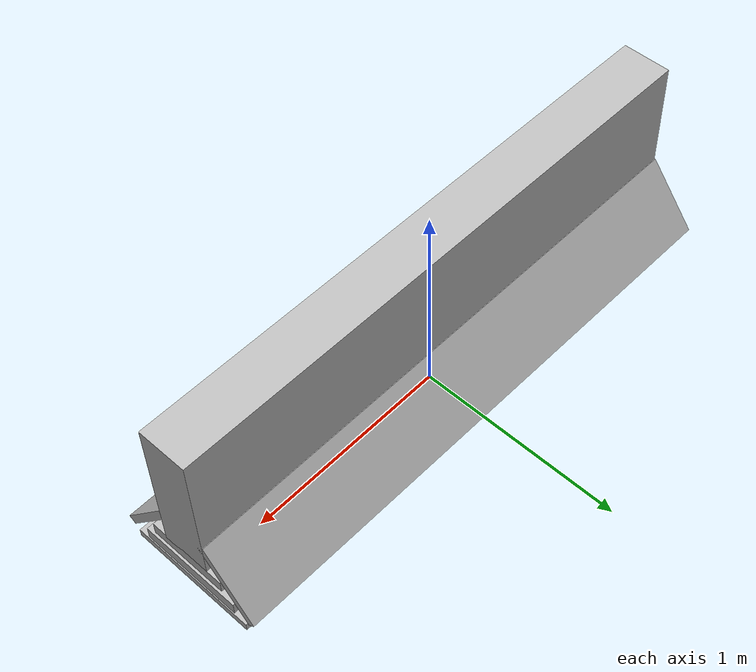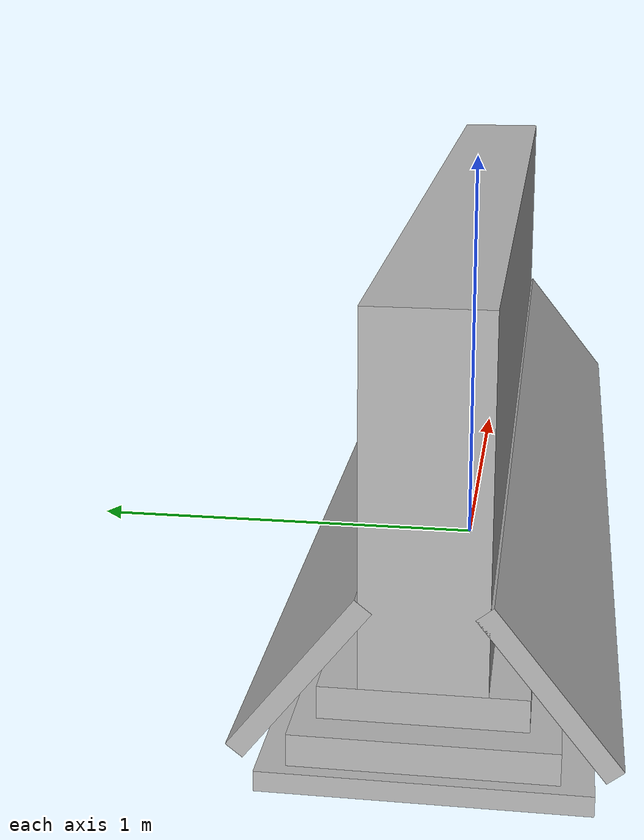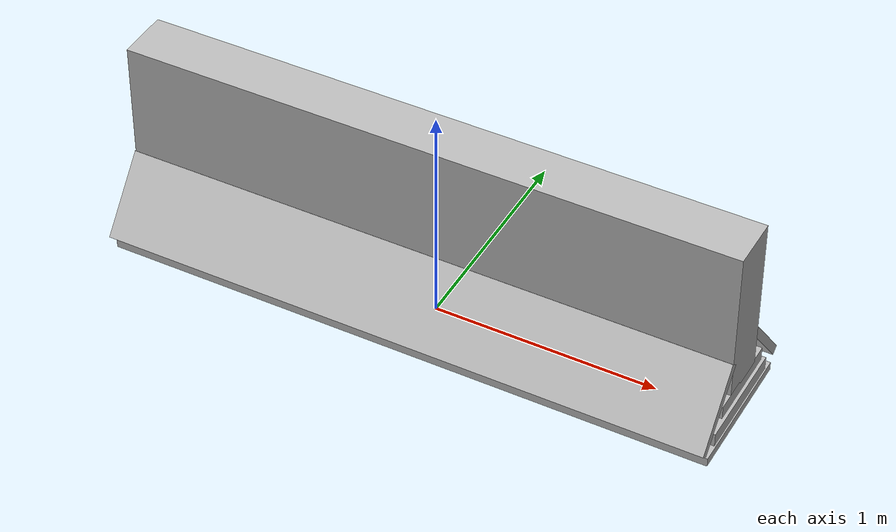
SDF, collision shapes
<?xml version='1.0'?>
<sdf version='1.7'>
  <model name='jersey_barrier2'>
    <link name='link'>
      <self_collide>0</self_collide>
      <enable_wind>0</enable_wind>
      <kinematic>0</kinematic>
      <inertial>
        <inertia>
          <ixx>0</ixx>
          <ixy>0</ixy>
          <ixz>0</ixz>
          <iyy>0</iyy>
          <iyz>0</iyz>
          <izz>0</izz>
        </inertia>
        <mass>0</mass>
        <pose>0 0 0 0 -0 0</pose>
      </inertial>
      <pose>0 0 0 0 -0 0</pose>
      <gravity>1</gravity>
      <visual name='visual'>
        <geometry>
          <mesh>
            <uri>model://jersey_barrier/meshes/jersey_barrier.dae</uri>
          </mesh>
        </geometry>
        <material>
          <shader type='pixel'>
            <normal_map>__default__</normal_map>
          </shader>
        </material>
        <pose>0 0 0 0 -0 0</pose>
        <transparency>0</transparency>
        <cast_shadows>1</cast_shadows>
      </visual>
      <collision name='upright'>
        <laser_retro>0</laser_retro>
        <max_contacts>10</max_contacts>
        <pose>0 0 0.5715 0 -0 0</pose>
        <geometry>
          <box>
            <size>2.72241 0.2324 0.711248</size>
          </box>
        </geometry>
        <surface>
          <friction>
            <ode>
              <mu>1</mu>
              <mu2>1</mu2>
              <fdir1>0 0 0</fdir1>
              <slip1>0</slip1>
              <slip2>0</slip2>
            </ode>
            <torsional>
              <coefficient>1</coefficient>
              <patch_radius>0</patch_radius>
              <surface_radius>0</surface_radius>
              <use_patch_radius>1</use_patch_radius>
              <ode>
                <slip>0</slip>
              </ode>
            </torsional>
          </friction>
          <bounce>
            <restitution_coefficient>0</restitution_coefficient>
            <threshold>1e+06</threshold>
          </bounce>
          <contact>
            <collide_without_contact>0</collide_without_contact>
            <collide_without_contact_bitmask>1</collide_without_contact_bitmask>
            <collide_bitmask>1</collide_bitmask>
            <ode>
              <soft_cfm>0</soft_cfm>
              <soft_erp>0.2</soft_erp>
              <kp>1e+13</kp>
              <kd>1</kd>
              <max_vel>0.01</max_vel>
              <min_depth>0</min_depth>
            </ode>
            <bullet>
              <split_impulse>1</split_impulse>
              <split_impulse_penetration_threshold>-0.01</split_impulse_penetration_threshold>
              <soft_cfm>0</soft_cfm>
              <soft_erp>0.2</soft_erp>
              <kp>1e+13</kp>
              <kd>1</kd>
            </bullet>
          </contact>
        </surface>
      </collision>
      <collision name='base'>
        <laser_retro>0</laser_retro>
        <max_contacts>10</max_contacts>
        <pose>0 0 0.032258 0 -0 0</pose>
        <geometry>
          <box>
            <size>2.72241 0.615105 0.040146</size>
          </box>
        </geometry>
        <surface>
          <friction>
            <ode>
              <mu>1</mu>
              <mu2>1</mu2>
              <fdir1>0 0 0</fdir1>
              <slip1>0</slip1>
              <slip2>0</slip2>
            </ode>
            <torsional>
              <coefficient>1</coefficient>
              <patch_radius>0</patch_radius>
              <surface_radius>0</surface_radius>
              <use_patch_radius>1</use_patch_radius>
              <ode>
                <slip>0</slip>
              </ode>
            </torsional>
          </friction>
          <bounce>
            <restitution_coefficient>0</restitution_coefficient>
            <threshold>1e+06</threshold>
          </bounce>
          <contact>
            <collide_without_contact>0</collide_without_contact>
            <collide_without_contact_bitmask>1</collide_without_contact_bitmask>
            <collide_bitmask>1</collide_bitmask>
            <ode>
              <soft_cfm>0</soft_cfm>
              <soft_erp>0.2</soft_erp>
              <kp>1e+13</kp>
              <kd>1</kd>
              <max_vel>0.01</max_vel>
              <min_depth>0</min_depth>
            </ode>
            <bullet>
              <split_impulse>1</split_impulse>
              <split_impulse_penetration_threshold>-0.01</split_impulse_penetration_threshold>
              <soft_cfm>0</soft_cfm>
              <soft_erp>0.2</soft_erp>
              <kp>1e+13</kp>
              <kd>1</kd>
            </bullet>
          </contact>
        </surface>
      </collision>
      <collision name='base2'>
        <laser_retro>0</laser_retro>
        <max_contacts>10</max_contacts>
        <pose>0 0 0.1 0 -0 0</pose>
        <geometry>
          <box>
            <size>2.72241 0.493177 0.062227</size>
          </box>
        </geometry>
        <surface>
          <friction>
            <ode>
              <mu>1</mu>
              <mu2>1</mu2>
              <fdir1>0 0 0</fdir1>
              <slip1>0</slip1>
              <slip2>0</slip2>
            </ode>
            <torsional>
              <coefficient>1</coefficient>
              <patch_radius>0</patch_radius>
              <surface_radius>0</surface_radius>
              <use_patch_radius>1</use_patch_radius>
              <ode>
                <slip>0</slip>
              </ode>
            </torsional>
          </friction>
          <bounce>
            <restitution_coefficient>0</restitution_coefficient>
            <threshold>1e+06</threshold>
          </bounce>
          <contact>
            <collide_without_contact>0</collide_without_contact>
            <collide_without_contact_bitmask>1</collide_without_contact_bitmask>
            <collide_bitmask>1</collide_bitmask>
            <ode>
              <soft_cfm>0</soft_cfm>
              <soft_erp>0.2</soft_erp>
              <kp>1e+13</kp>
              <kd>1</kd>
              <max_vel>0.01</max_vel>
              <min_depth>0</min_depth>
            </ode>
            <bullet>
              <split_impulse>1</split_impulse>
              <split_impulse_penetration_threshold>-0.01</split_impulse_penetration_threshold>
              <soft_cfm>0</soft_cfm>
              <soft_erp>0.2</soft_erp>
              <kp>1e+13</kp>
              <kd>1</kd>
            </bullet>
          </contact>
        </surface>
      </collision>
      <collision name='base3'>
        <laser_retro>0</laser_retro>
        <max_contacts>10</max_contacts>
        <pose>0 0 0.2 0 -0 0</pose>
        <geometry>
          <box>
            <size>2.72241 0.379367 0.062227</size>
          </box>
        </geometry>
        <surface>
          <friction>
            <ode>
              <mu>1</mu>
              <mu2>1</mu2>
              <fdir1>0 0 0</fdir1>
              <slip1>0</slip1>
              <slip2>0</slip2>
            </ode>
            <torsional>
              <coefficient>1</coefficient>
              <patch_radius>0</patch_radius>
              <surface_radius>0</surface_radius>
              <use_patch_radius>1</use_patch_radius>
              <ode>
                <slip>0</slip>
              </ode>
            </torsional>
          </friction>
          <bounce>
            <restitution_coefficient>0</restitution_coefficient>
            <threshold>1e+06</threshold>
          </bounce>
          <contact>
            <collide_without_contact>0</collide_without_contact>
            <collide_without_contact_bitmask>1</collide_without_contact_bitmask>
            <collide_bitmask>1</collide_bitmask>
            <ode>
              <soft_cfm>0</soft_cfm>
              <soft_erp>0.2</soft_erp>
              <kp>1e+13</kp>
              <kd>1</kd>
              <max_vel>0.01</max_vel>
              <min_depth>0</min_depth>
            </ode>
            <bullet>
              <split_impulse>1</split_impulse>
              <split_impulse_penetration_threshold>-0.01</split_impulse_penetration_threshold>
              <soft_cfm>0</soft_cfm>
              <soft_erp>0.2</soft_erp>
              <kp>1e+13</kp>
              <kd>1</kd>
            </bullet>
          </contact>
        </surface>
      </collision>
      <collision name='left-angle'>
        <laser_retro>0</laser_retro>
        <max_contacts>10</max_contacts>
        <pose>0 -0.224 0.2401 0.9 -0 0</pose>
        <geometry>
          <box>
            <size>2.72241 0.379367 0.040146</size>
          </box>
        </geometry>
        <surface>
          <friction>
            <ode>
              <mu>1</mu>
              <mu2>1</mu2>
              <fdir1>0 0 0</fdir1>
              <slip1>0</slip1>
              <slip2>0</slip2>
            </ode>
            <torsional>
              <coefficient>1</coefficient>
              <patch_radius>0</patch_radius>
              <surface_radius>0</surface_radius>
              <use_patch_radius>1</use_patch_radius>
              <ode>
                <slip>0</slip>
              </ode>
            </torsional>
          </friction>
          <bounce>
            <restitution_coefficient>0</restitution_coefficient>
            <threshold>1e+06</threshold>
          </bounce>
          <contact>
            <collide_without_contact>0</collide_without_contact>
            <collide_without_contact_bitmask>1</collide_without_contact_bitmask>
            <collide_bitmask>1</collide_bitmask>
            <ode>
              <soft_cfm>0</soft_cfm>
              <soft_erp>0.2</soft_erp>
              <kp>1e+13</kp>
              <kd>1</kd>
              <max_vel>0.01</max_vel>
              <min_depth>0</min_depth>
            </ode>
            <bullet>
              <split_impulse>1</split_impulse>
              <split_impulse_penetration_threshold>-0.01</split_impulse_penetration_threshold>
              <soft_cfm>0</soft_cfm>
              <soft_erp>0.2</soft_erp>
              <kp>1e+13</kp>
              <kd>1</kd>
            </bullet>
          </contact>
        </surface>
      </collision>
      <collision name='right-angle'>
        <laser_retro>0</laser_retro>
        <max_contacts>10</max_contacts>
        <pose>0 0.224 0.2401 -0.9 0 0</pose>
        <geometry>
          <box>
            <size>2.72241 0.379367 0.040146</size>
          </box>
        </geometry>
        <surface>
          <friction>
            <ode>
              <mu>1</mu>
              <mu2>1</mu2>
              <fdir1>0 0 0</fdir1>
              <slip1>0</slip1>
              <slip2>0</slip2>
            </ode>
            <torsional>
              <coefficient>1</coefficient>
              <patch_radius>0</patch_radius>
              <surface_radius>0</surface_radius>
              <use_patch_radius>1</use_patch_radius>
              <ode>
                <slip>0</slip>
              </ode>
            </torsional>
          </friction>
          <bounce>
            <restitution_coefficient>0</restitution_coefficient>
            <threshold>1e+06</threshold>
          </bounce>
          <contact>
            <collide_without_contact>0</collide_without_contact>
            <collide_without_contact_bitmask>1</collide_without_contact_bitmask>
            <collide_bitmask>1</collide_bitmask>
            <ode>
              <soft_cfm>0</soft_cfm>
              <soft_erp>0.2</soft_erp>
              <kp>1e+13</kp>
              <kd>1</kd>
              <max_vel>0.01</max_vel>
              <min_depth>0</min_depth>
            </ode>
            <bullet>
              <split_impulse>1</split_impulse>
              <split_impulse_penetration_threshold>-0.01</split_impulse_penetration_threshold>
              <soft_cfm>0</soft_cfm>
              <soft_erp>0.2</soft_erp>
              <kp>1e+13</kp>
              <kd>1</kd>
            </bullet>
          </contact>
        </surface>
      </collision>
    </link>
    <static>1</static>
    <allow_auto_disable>1</allow_auto_disable>
  </model>
</sdf>
